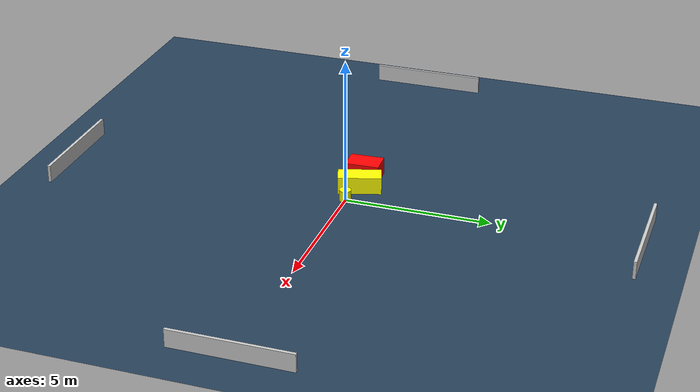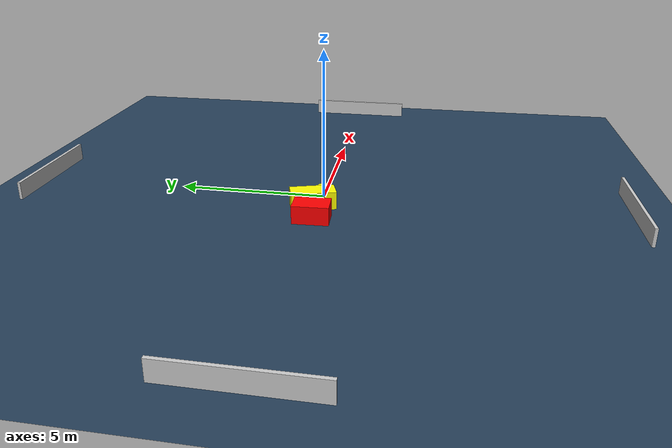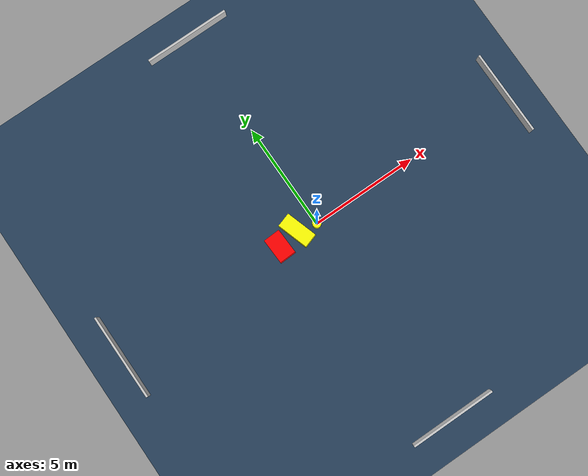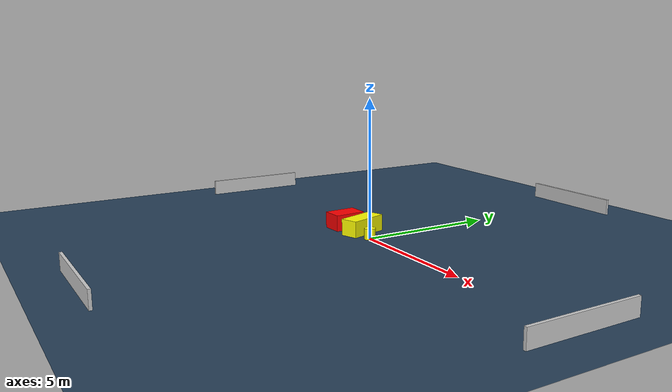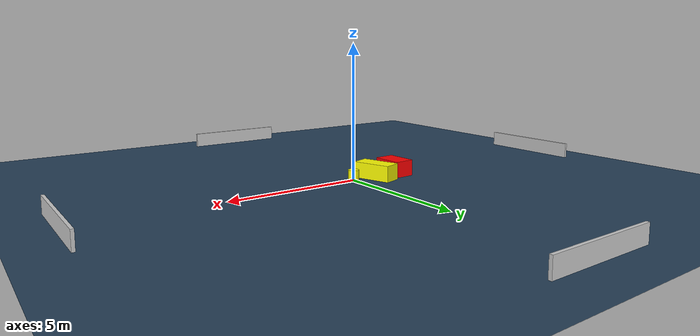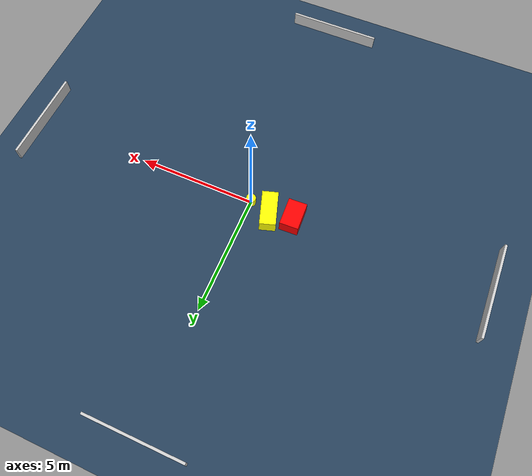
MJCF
<?xml version="1.0" ?>
<mujoco model="generated_environment">
  <option timestep="0.01" integrator="RK4" cone="elliptic"/>
  <default>
    <geom density="1"/>
  </default>
  <asset>
    <texture builtin="gradient" height="3072" name="skybox" rgb1="0.3 0.5 0.7" rgb2="0 0 0" type="skybox" width="512"/>
    <texture builtin="checker" height="300" name="groundplane" rgb1="0.2 0.3 0.4" rgb2="0.1 0.2 0.3" type="2d" width="300"/>
    <material name="groundplane" reflectance="0.2" texrepeat="5 5" texture="groundplane"/>
  </asset>
  <worldbody>
    <light dir="0 0 -1" directional="true" pos="0 0 1.5"/>
    <geom condim="3" friction="0.5 0.005 0.001" material="groundplane" name="floor" pos="0 0 0" size="0 0 0.05" type="plane"/>
    <body name="walls">
      <geom name="wall_1" condim="4" pos="-10.0 0.0 0.3" rgba="0.800000011920929 0.800000011920929 0.800000011920929 1.0" size="0.05 2.0 0.3" type="box"/>
      <geom name="wall_2" condim="4" pos="10.0 0.0 0.3" rgba="0.800000011920929 0.800000011920929 0.800000011920929 1.0" size="0.05 2.0 0.3" type="box"/>
      <geom name="wall_3" condim="4" pos="0.0 -10.0 0.3" rgba="0.800000011920929 0.800000011920929 0.800000011920929 1.0" size="2.0 0.05 0.3" type="box"/>
      <geom name="wall_4" condim="4" pos="0.0 10.0 0.3" rgba="0.800000011920929 0.800000011920929 0.800000011920929 1.0" size="2.0 0.05 0.3" type="box"/>
    </body>
    <body name="robot">
      <joint name="joint_x" type="slide" pos="0 0 0" axis="1 0 0"/>
      <joint name="joint_y" type="slide" pos="0 0 0" axis="0 1 0"/>
      <geom name="robot" type="cylinder" pos="0.0 0.0 0.2" size="0.2 0.2 0.0" mass="5.0" friction="1.0 0.005 0.0001" condim="4" rgba="1.0 1.0 0.0 1.0"/>
    </body>
    <body name="obstacle_1_movable">
      <geom name="obstacle_1_movable" condim="4" pos="-0.8778753567918746 0.21410197583391677 0.3" euler="0 0 197.72861362035297" friction="0.0 0.005 0.001" rgba="1.0 1.0 0.0 1.0" size="0.3345955748316558 0.7380963400955114 0.3" type="box" mass="0.1"/>
      <joint type="free"/>
    </body>
    <body name="obstacle_2_static">
      <geom name="obstacle_2_static" condim="4" pos="-1.8799450167869614 0.06589471255366794 0.3" euler="0 0 272.36346438547076" friction="0.0 0.005 0.001" rgba="1.0 0.0 0.0 1.0" size="0.5862321916932098 0.39007425833268194 0.3" type="box"/>
    </body>
  </worldbody>
  <actuator>
    <motor name="actuator_x" joint="joint_x" gear="1" ctrlrange="-1 1"/>
    <motor name="actuator_y" joint="joint_y" gear="1" ctrlrange="-1 1"/>
  </actuator>
</mujoco>
